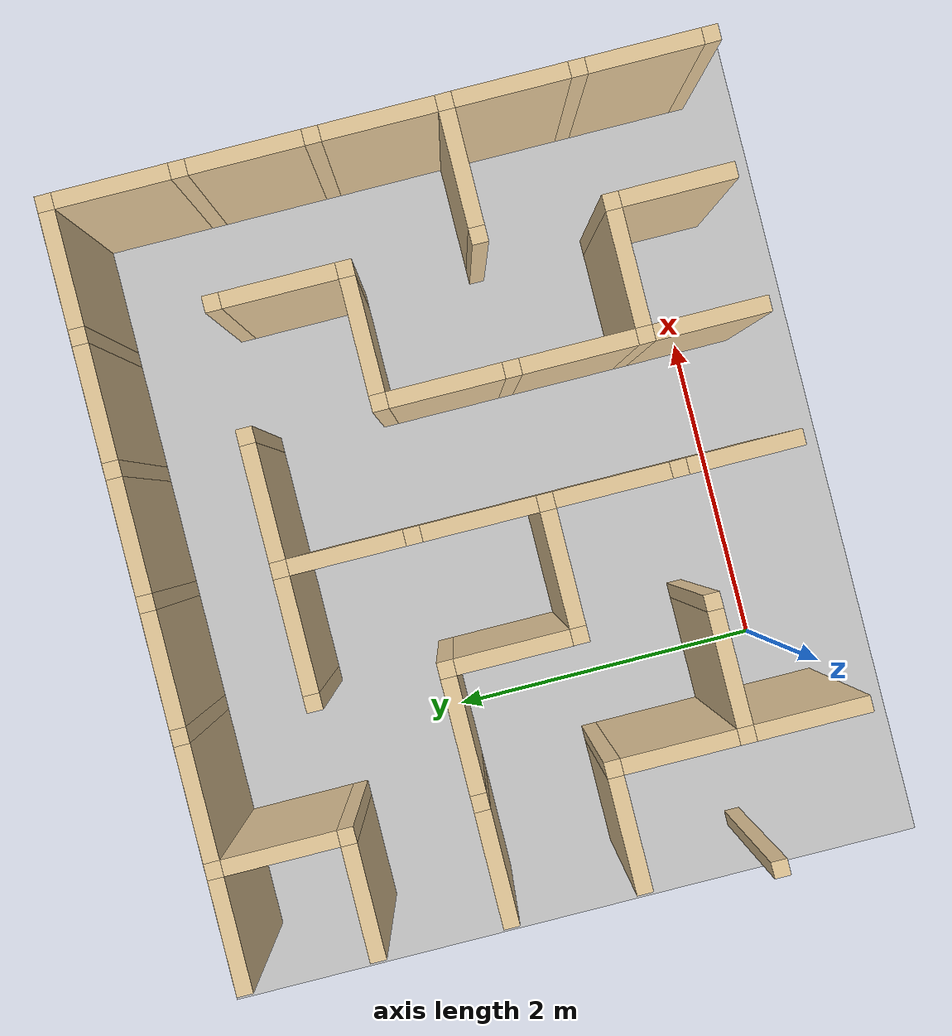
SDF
<sdf version="1.8">
 <world name="maze_world">
  <model name="ground_plane">
   <static>true</static>
   <link name="link">
    <collision name="collision">
     <geometry><plane><normal>0 0 1</normal><size>100 100</size></plane></geometry>
    </collision>
    <visual name="visual">
     <geometry><plane><normal>0 0 1</normal><size>100 100</size></plane></geometry>
     <material><ambient>0.8 0.8 0.8 1</ambient><diffuse>0.8 0.8 0.8 1</diffuse></material>
    </visual>
   </link>
  </model>
  <model name="maze">
   <link name="Wall_3_0_h">
    <collision name="Wall_0_Collision">
     <geometry><box><size>0.7000000000000001 0.1 1.5</size></box></geometry>
     <pose>0 0 0.75 0 -0 0</pose>
    </collision>
    <visual name="Wall_0_Visual">
     <pose>0 0 0.75 0 -0 0</pose>
     <geometry><box><size>0.7000000000000001 0.1 1.5</size></box></geometry>
     <material>
      <diffuse>0.921569 0.807843 0.615686 1</diffuse>
      <ambient>0.921569 0.807843 0.615686 1</ambient>
     </material>
     <meta><layer>0</layer></meta>
    </visual>
    <pose>-0.7999999999999998 3.6 0 0 -0 0</pose>
   </link>
   <link name="Wall_4_0_h">
    <collision name="Wall_0_Collision">
     <geometry><box><size>0.7000000000000001 0.1 1.5</size></box></geometry>
     <pose>0 0 0.75 0 -0 0</pose>
    </collision>
    <visual name="Wall_0_Visual">
     <pose>0 0 0.75 0 -0 0</pose>
     <geometry><box><size>0.7000000000000001 0.1 1.5</size></box></geometry>
     <material>
      <diffuse>0.921569 0.807843 0.615686 1</diffuse>
      <ambient>0.921569 0.807843 0.615686 1</ambient>
     </material>
     <meta><layer>0</layer></meta>
    </visual>
    <pose>0.0 3.6 0 0 -0 0</pose>
   </link>
   <link name="Wall_4_0_v">
    <collision name="Wall_0_Collision">
     <geometry><box><size>0.7000000000000001 0.1 1.5</size></box></geometry>
     <pose>0 0 0.75 0 -0 0</pose>
    </collision>
    <visual name="Wall_0_Visual">
     <pose>0 0 0.75 0 -0 0</pose>
     <geometry><box><size>0.7000000000000001 0.1 1.5</size></box></geometry>
     <material>
      <diffuse>0.921569 0.807843 0.615686 1</diffuse>
      <ambient>0.921569 0.807843 0.615686 1</ambient>
     </material>
     <meta><layer>0</layer></meta>
    </visual>
    <pose>-0.3999999999999999 3.2 0 0 -0 1.5708</pose>
   </link>
   <link name="Joint_-0.3999999999999999_3.6">
    <collision name="Wall_2_Collision">
     <geometry><box><size>0.1 0.1 1.5</size></box></geometry>
     <pose>0 0 0.75 0 -0 0</pose>
    </collision>
    <visual name="Wall_2_Visual">
     <pose>0 0 0.75 0 -0 0</pose>
     <geometry><box><size>0.1 0.1 1.5</size></box></geometry>
     <material>
      <diffuse>0.921569 0.807843 0.615686 1</diffuse>
      <ambient>0.721569 0.907843 0.215686 1</ambient>
     </material>
     <meta><layer>0</layer></meta>
    </visual>
    <pose>-0.3999999999999999 3.6 0 0 -0 0</pose>
   </link>
   <link name="Wall_5_0_h">
    <collision name="Wall_0_Collision">
     <geometry><box><size>0.7000000000000001 0.1 1.5</size></box></geometry>
     <pose>0 0 0.75 0 -0 0</pose>
    </collision>
    <visual name="Wall_0_Visual">
     <pose>0 0 0.75 0 -0 0</pose>
     <geometry><box><size>0.7000000000000001 0.1 1.5</size></box></geometry>
     <material>
      <diffuse>0.921569 0.807843 0.615686 1</diffuse>
      <ambient>0.921569 0.807843 0.615686 1</ambient>
     </material>
     <meta><layer>0</layer></meta>
    </visual>
    <pose>0.8000000000000003 3.6 0 0 -0 0</pose>
   </link>
   <link name="Joint_0.3999999999999999_3.6">
    <collision name="Wall_2_Collision">
     <geometry><box><size>0.1 0.1 1.5</size></box></geometry>
     <pose>0 0 0.75 0 -0 0</pose>
    </collision>
    <visual name="Wall_2_Visual">
     <pose>0 0 0.75 0 -0 0</pose>
     <geometry><box><size>0.1 0.1 1.5</size></box></geometry>
     <material>
      <diffuse>0.921569 0.807843 0.615686 1</diffuse>
      <ambient>0.721569 0.907843 0.215686 1</ambient>
     </material>
     <meta><layer>0</layer></meta>
    </visual>
    <pose>0.3999999999999999 3.6 0 0 -0 0</pose>
   </link>
   <link name="Wall_6_0_h">
    <collision name="Wall_0_Collision">
     <geometry><box><size>0.7000000000000001 0.1 1.5</size></box></geometry>
     <pose>0 0 0.75 0 -0 0</pose>
    </collision>
    <visual name="Wall_0_Visual">
     <pose>0 0 0.75 0 -0 0</pose>
     <geometry><box><size>0.7000000000000001 0.1 1.5</size></box></geometry>
     <material>
      <diffuse>0.921569 0.807843 0.615686 1</diffuse>
      <ambient>0.921569 0.807843 0.615686 1</ambient>
     </material>
     <meta><layer>0</layer></meta>
    </visual>
    <pose>1.600000000000001 3.6 0 0 -0 0</pose>
   </link>
   <link name="Joint_1.2000000000000006_3.6">
    <collision name="Wall_2_Collision">
     <geometry><box><size>0.1 0.1 1.5</size></box></geometry>
     <pose>0 0 0.75 0 -0 0</pose>
    </collision>
    <visual name="Wall_2_Visual">
     <pose>0 0 0.75 0 -0 0</pose>
     <geometry><box><size>0.1 0.1 1.5</size></box></geometry>
     <material>
      <diffuse>0.921569 0.807843 0.615686 1</diffuse>
      <ambient>0.721569 0.907843 0.215686 1</ambient>
     </material>
     <meta><layer>0</layer></meta>
    </visual>
    <pose>1.2000000000000006 3.6 0 0 -0 0</pose>
   </link>
   <link name="Wall_7_0_h">
    <collision name="Wall_0_Collision">
     <geometry><box><size>0.7000000000000001 0.1 1.5</size></box></geometry>
     <pose>0 0 0.75 0 -0 0</pose>
    </collision>
    <visual name="Wall_0_Visual">
     <pose>0 0 0.75 0 -0 0</pose>
     <geometry><box><size>0.7000000000000001 0.1 1.5</size></box></geometry>
     <material>
      <diffuse>0.921569 0.807843 0.615686 1</diffuse>
      <ambient>0.921569 0.807843 0.615686 1</ambient>
     </material>
     <meta><layer>0</layer></meta>
    </visual>
    <pose>2.400000000000001 3.6 0 0 -0 0</pose>
   </link>
   <link name="Joint_2.0000000000000004_3.6">
    <collision name="Wall_2_Collision">
     <geometry><box><size>0.1 0.1 1.5</size></box></geometry>
     <pose>0 0 0.75 0 -0 0</pose>
    </collision>
    <visual name="Wall_2_Visual">
     <pose>0 0 0.75 0 -0 0</pose>
     <geometry><box><size>0.1 0.1 1.5</size></box></geometry>
     <material>
      <diffuse>0.921569 0.807843 0.615686 1</diffuse>
      <ambient>0.721569 0.907843 0.215686 1</ambient>
     </material>
     <meta><layer>0</layer></meta>
    </visual>
    <pose>2.0000000000000004 3.6 0 0 -0 0</pose>
   </link>
   <link name="Wall_8_0_h">
    <collision name="Wall_0_Collision">
     <geometry><box><size>0.7000000000000001 0.1 1.5</size></box></geometry>
     <pose>0 0 0.75 0 -0 0</pose>
    </collision>
    <visual name="Wall_0_Visual">
     <pose>0 0 0.75 0 -0 0</pose>
     <geometry><box><size>0.7000000000000001 0.1 1.5</size></box></geometry>
     <material>
      <diffuse>0.921569 0.807843 0.615686 1</diffuse>
      <ambient>0.921569 0.807843 0.615686 1</ambient>
     </material>
     <meta><layer>0</layer></meta>
    </visual>
    <pose>3.2000000000000006 3.6 0 0 -0 0</pose>
   </link>
   <link name="Joint_2.8000000000000003_3.6">
    <collision name="Wall_2_Collision">
     <geometry><box><size>0.1 0.1 1.5</size></box></geometry>
     <pose>0 0 0.75 0 -0 0</pose>
    </collision>
    <visual name="Wall_2_Visual">
     <pose>0 0 0.75 0 -0 0</pose>
     <geometry><box><size>0.1 0.1 1.5</size></box></geometry>
     <material>
      <diffuse>0.921569 0.807843 0.615686 1</diffuse>
      <ambient>0.721569 0.907843 0.215686 1</ambient>
     </material>
     <meta><layer>0</layer></meta>
    </visual>
    <pose>2.8000000000000003 3.6 0 0 -0 0</pose>
   </link>
   <link name="Wall_9_0_v">
    <collision name="Wall_0_Collision">
     <geometry><box><size>0.7000000000000001 0.1 1.5</size></box></geometry>
     <pose>0 0 0.75 0 -0 0</pose>
    </collision>
    <visual name="Wall_0_Visual">
     <pose>0 0 0.75 0 -0 0</pose>
     <geometry><box><size>0.7000000000000001 0.1 1.5</size></box></geometry>
     <material>
      <diffuse>0.921569 0.807843 0.615686 1</diffuse>
      <ambient>0.921569 0.807843 0.615686 1</ambient>
     </material>
     <meta><layer>0</layer></meta>
    </visual>
    <pose>3.6 3.2 0 0 -0 1.5708</pose>
   </link>
   <link name="Joint_3.6_3.6">
    <collision name="Wall_2_Collision">
     <geometry><box><size>0.1 0.1 1.5</size></box></geometry>
     <pose>0 0 0.75 0 -0 0</pose>
    </collision>
    <visual name="Wall_2_Visual">
     <pose>0 0 0.75 0 -0 0</pose>
     <geometry><box><size>0.1 0.1 1.5</size></box></geometry>
     <material>
      <diffuse>0.921569 0.807843 0.615686 1</diffuse>
      <ambient>0.721569 0.907843 0.215686 1</ambient>
     </material>
     <meta><layer>0</layer></meta>
    </visual>
    <pose>3.6 3.6 0 0 -0 0</pose>
   </link>
   <link name="Wall_3_1_h">
    <collision name="Wall_0_Collision">
     <geometry><box><size>0.7000000000000001 0.1 1.5</size></box></geometry>
     <pose>0 0 0.75 0 -0 0</pose>
    </collision>
    <visual name="Wall_0_Visual">
     <pose>0 0 0.75 0 -0 0</pose>
     <geometry><box><size>0.7000000000000001 0.1 1.5</size></box></geometry>
     <material>
      <diffuse>0.921569 0.807843 0.615686 1</diffuse>
      <ambient>0.921569 0.807843 0.615686 1</ambient>
     </material>
     <meta><layer>0</layer></meta>
    </visual>
    <pose>-0.7999999999999998 2.8 0 0 -0 0</pose>
   </link>
   <link name="Joint_-0.3999999999999999_2.8">
    <collision name="Wall_2_Collision">
     <geometry><box><size>0.1 0.1 1.5</size></box></geometry>
     <pose>0 0 0.75 0 -0 0</pose>
    </collision>
    <visual name="Wall_2_Visual">
     <pose>0 0 0.75 0 -0 0</pose>
     <geometry><box><size>0.1 0.1 1.5</size></box></geometry>
     <material>
      <diffuse>0.921569 0.807843 0.615686 1</diffuse>
      <ambient>0.721569 0.907843 0.215686 1</ambient>
     </material>
     <meta><layer>0</layer></meta>
    </visual>
    <pose>-0.3999999999999999 2.8 0 0 -0 0</pose>
   </link>
   <link name="Wall_5_1_h">
    <collision name="Wall_0_Collision">
     <geometry><box><size>0.7000000000000001 0.1 1.5</size></box></geometry>
     <pose>0 0 0.75 0 -0 0</pose>
    </collision>
    <visual name="Wall_0_Visual">
     <pose>0 0 0.75 0 -0 0</pose>
     <geometry><box><size>0.7000000000000001 0.1 1.5</size></box></geometry>
     <material>
      <diffuse>0.921569 0.807843 0.615686 1</diffuse>
      <ambient>0.921569 0.807843 0.615686 1</ambient>
     </material>
     <meta><layer>0</layer></meta>
    </visual>
    <pose>0.8000000000000003 2.8 0 0 -0 0</pose>
   </link>
   <link name="Joint_0.3999999999999999_2.8">
    <collision name="Wall_2_Collision">
     <geometry><box><size>0.1 0.1 1.5</size></box></geometry>
     <pose>0 0 0.75 0 -0 0</pose>
    </collision>
    <visual name="Wall_2_Visual">
     <pose>0 0 0.75 0 -0 0</pose>
     <geometry><box><size>0.1 0.1 1.5</size></box></geometry>
     <material>
      <diffuse>0.921569 0.807843 0.615686 1</diffuse>
      <ambient>0.721569 0.907843 0.215686 1</ambient>
     </material>
     <meta><layer>0</layer></meta>
    </visual>
    <pose>0.3999999999999999 2.8 0 0 -0 0</pose>
   </link>
   <link name="Wall_6_1_h">
    <collision name="Wall_0_Collision">
     <geometry><box><size>0.7000000000000001 0.1 1.5</size></box></geometry>
     <pose>0 0 0.75 0 -0 0</pose>
    </collision>
    <visual name="Wall_0_Visual">
     <pose>0 0 0.75 0 -0 0</pose>
     <geometry><box><size>0.7000000000000001 0.1 1.5</size></box></geometry>
     <material>
      <diffuse>0.921569 0.807843 0.615686 1</diffuse>
      <ambient>0.921569 0.807843 0.615686 1</ambient>
     </material>
     <meta><layer>0</layer></meta>
    </visual>
    <pose>1.600000000000001 2.8 0 0 -0 0</pose>
   </link>
   <link name="Wall_6_1_v">
    <collision name="Wall_0_Collision">
     <geometry><box><size>0.7000000000000001 0.1 1.5</size></box></geometry>
     <pose>0 0 0.75 0 -0 0</pose>
    </collision>
    <visual name="Wall_0_Visual">
     <pose>0 0 0.75 0 -0 0</pose>
     <geometry><box><size>0.7000000000000001 0.1 1.5</size></box></geometry>
     <material>
      <diffuse>0.921569 0.807843 0.615686 1</diffuse>
      <ambient>0.921569 0.807843 0.615686 1</ambient>
     </material>
     <meta><layer>0</layer></meta>
    </visual>
    <pose>1.2000000000000006 2.4 0 0 -0 1.5708</pose>
   </link>
   <link name="Joint_1.2000000000000006_2.8">
    <collision name="Wall_2_Collision">
     <geometry><box><size>0.1 0.1 1.5</size></box></geometry>
     <pose>0 0 0.75 0 -0 0</pose>
    </collision>
    <visual name="Wall_2_Visual">
     <pose>0 0 0.75 0 -0 0</pose>
     <geometry><box><size>0.1 0.1 1.5</size></box></geometry>
     <material>
      <diffuse>0.921569 0.807843 0.615686 1</diffuse>
      <ambient>0.721569 0.907843 0.215686 1</ambient>
     </material>
     <meta><layer>0</layer></meta>
    </visual>
    <pose>1.2000000000000006 2.8 0 0 -0 0</pose>
   </link>
   <link name="Joint_2.0000000000000004_2.8">
    <collision name="Wall_2_Collision">
     <geometry><box><size>0.1 0.1 1.5</size></box></geometry>
     <pose>0 0 0.75 0 -0 0</pose>
    </collision>
    <visual name="Wall_2_Visual">
     <pose>0 0 0.75 0 -0 0</pose>
     <geometry><box><size>0.1 0.1 1.5</size></box></geometry>
     <material>
      <diffuse>0.921569 0.807843 0.615686 1</diffuse>
      <ambient>0.721569 0.907843 0.215686 1</ambient>
     </material>
     <meta><layer>0</layer></meta>
    </visual>
    <pose>2.0000000000000004 2.8 0 0 -0 0</pose>
   </link>
   <link name="Wall_8_1_v">
    <collision name="Wall_0_Collision">
     <geometry><box><size>0.7000000000000001 0.1 1.5</size></box></geometry>
     <pose>0 0 0.75 0 -0 0</pose>
    </collision>
    <visual name="Wall_0_Visual">
     <pose>0 0 0.75 0 -0 0</pose>
     <geometry><box><size>0.7000000000000001 0.1 1.5</size></box></geometry>
     <material>
      <diffuse>0.921569 0.807843 0.615686 1</diffuse>
      <ambient>0.921569 0.807843 0.615686 1</ambient>
     </material>
     <meta><layer>0</layer></meta>
    </visual>
    <pose>2.8000000000000003 2.4 0 0 -0 1.5708</pose>
   </link>
   <link name="Joint_2.8000000000000003_2.8">
    <collision name="Wall_2_Collision">
     <geometry><box><size>0.1 0.1 1.5</size></box></geometry>
     <pose>0 0 0.75 0 -0 0</pose>
    </collision>
    <visual name="Wall_2_Visual">
     <pose>0 0 0.75 0 -0 0</pose>
     <geometry><box><size>0.1 0.1 1.5</size></box></geometry>
     <material>
      <diffuse>0.921569 0.807843 0.615686 1</diffuse>
      <ambient>0.721569 0.907843 0.215686 1</ambient>
     </material>
     <meta><layer>0</layer></meta>
    </visual>
    <pose>2.8000000000000003 2.8 0 0 -0 0</pose>
   </link>
   <link name="Wall_9_1_v">
    <collision name="Wall_0_Collision">
     <geometry><box><size>0.7000000000000001 0.1 1.5</size></box></geometry>
     <pose>0 0 0.75 0 -0 0</pose>
    </collision>
    <visual name="Wall_0_Visual">
     <pose>0 0 0.75 0 -0 0</pose>
     <geometry><box><size>0.7000000000000001 0.1 1.5</size></box></geometry>
     <material>
      <diffuse>0.921569 0.807843 0.615686 1</diffuse>
      <ambient>0.921569 0.807843 0.615686 1</ambient>
     </material>
     <meta><layer>0</layer></meta>
    </visual>
    <pose>3.6 2.4 0 0 -0 1.5708</pose>
   </link>
   <link name="Joint_3.6_2.8">
    <collision name="Wall_2_Collision">
     <geometry><box><size>0.1 0.1 1.5</size></box></geometry>
     <pose>0 0 0.75 0 -0 0</pose>
    </collision>
    <visual name="Wall_2_Visual">
     <pose>0 0 0.75 0 -0 0</pose>
     <geometry><box><size>0.1 0.1 1.5</size></box></geometry>
     <material>
      <diffuse>0.921569 0.807843 0.615686 1</diffuse>
      <ambient>0.721569 0.907843 0.215686 1</ambient>
     </material>
     <meta><layer>0</layer></meta>
    </visual>
    <pose>3.6 2.8 0 0 -0 0</pose>
   </link>
   <link name="Wall_3_2_h">
    <collision name="Wall_0_Collision">
     <geometry><box><size>0.7000000000000001 0.1 1.5</size></box></geometry>
     <pose>0 0 0.75 0 -0 0</pose>
    </collision>
    <visual name="Wall_0_Visual">
     <pose>0 0 0.75 0 -0 0</pose>
     <geometry><box><size>0.7000000000000001 0.1 1.5</size></box></geometry>
     <material>
      <diffuse>0.921569 0.807843 0.615686 1</diffuse>
      <ambient>0.921569 0.807843 0.615686 1</ambient>
     </material>
     <meta><layer>0</layer></meta>
    </visual>
    <pose>-0.7999999999999998 2.0 0 0 -0 0</pose>
   </link>
   <link name="Wall_4_2_h">
    <collision name="Wall_0_Collision">
     <geometry><box><size>0.7000000000000001 0.1 1.5</size></box></geometry>
     <pose>0 0 0.75 0 -0 0</pose>
    </collision>
    <visual name="Wall_0_Visual">
     <pose>0 0 0.75 0 -0 0</pose>
     <geometry><box><size>0.7000000000000001 0.1 1.5</size></box></geometry>
     <material>
      <diffuse>0.921569 0.807843 0.615686 1</diffuse>
      <ambient>0.921569 0.807843 0.615686 1</ambient>
     </material>
     <meta><layer>0</layer></meta>
    </visual>
    <pose>0.0 2.0 0 0 -0 0</pose>
   </link>
   <link name="Joint_-0.3999999999999999_2.0">
    <collision name="Wall_2_Collision">
     <geometry><box><size>0.1 0.1 1.5</size></box></geometry>
     <pose>0 0 0.75 0 -0 0</pose>
    </collision>
    <visual name="Wall_2_Visual">
     <pose>0 0 0.75 0 -0 0</pose>
     <geometry><box><size>0.1 0.1 1.5</size></box></geometry>
     <material>
      <diffuse>0.921569 0.807843 0.615686 1</diffuse>
      <ambient>0.721569 0.907843 0.215686 1</ambient>
     </material>
     <meta><layer>0</layer></meta>
    </visual>
    <pose>-0.3999999999999999 2.0 0 0 -0 0</pose>
   </link>
   <link name="Wall_5_2_v">
    <collision name="Wall_0_Collision">
     <geometry><box><size>0.7000000000000001 0.1 1.5</size></box></geometry>
     <pose>0 0 0.75 0 -0 0</pose>
    </collision>
    <visual name="Wall_0_Visual">
     <pose>0 0 0.75 0 -0 0</pose>
     <geometry><box><size>0.7000000000000001 0.1 1.5</size></box></geometry>
     <material>
      <diffuse>0.921569 0.807843 0.615686 1</diffuse>
      <ambient>0.921569 0.807843 0.615686 1</ambient>
     </material>
     <meta><layer>0</layer></meta>
    </visual>
    <pose>0.3999999999999999 1.6 0 0 -0 1.5708</pose>
   </link>
   <link name="Joint_0.3999999999999999_2.0">
    <collision name="Wall_2_Collision">
     <geometry><box><size>0.1 0.1 1.5</size></box></geometry>
     <pose>0 0 0.75 0 -0 0</pose>
    </collision>
    <visual name="Wall_2_Visual">
     <pose>0 0 0.75 0 -0 0</pose>
     <geometry><box><size>0.1 0.1 1.5</size></box></geometry>
     <material>
      <diffuse>0.921569 0.807843 0.615686 1</diffuse>
      <ambient>0.721569 0.907843 0.215686 1</ambient>
     </material>
     <meta><layer>0</layer></meta>
    </visual>
    <pose>0.3999999999999999 2.0 0 0 -0 0</pose>
   </link>
   <link name="Wall_6_2_v">
    <collision name="Wall_0_Collision">
     <geometry><box><size>0.7000000000000001 0.1 1.5</size></box></geometry>
     <pose>0 0 0.75 0 -0 0</pose>
    </collision>
    <visual name="Wall_0_Visual">
     <pose>0 0 0.75 0 -0 0</pose>
     <geometry><box><size>0.7000000000000001 0.1 1.5</size></box></geometry>
     <material>
      <diffuse>0.921569 0.807843 0.615686 1</diffuse>
      <ambient>0.921569 0.807843 0.615686 1</ambient>
     </material>
     <meta><layer>0</layer></meta>
    </visual>
    <pose>1.2000000000000006 1.6 0 0 -0 1.5708</pose>
   </link>
   <link name="Joint_1.2000000000000006_2.0">
    <collision name="Wall_2_Collision">
     <geometry><box><size>0.1 0.1 1.5</size></box></geometry>
     <pose>0 0 0.75 0 -0 0</pose>
    </collision>
    <visual name="Wall_2_Visual">
     <pose>0 0 0.75 0 -0 0</pose>
     <geometry><box><size>0.1 0.1 1.5</size></box></geometry>
     <material>
      <diffuse>0.921569 0.807843 0.615686 1</diffuse>
      <ambient>0.721569 0.907843 0.215686 1</ambient>
     </material>
     <meta><layer>0</layer></meta>
    </visual>
    <pose>1.2000000000000006 2.0 0 0 -0 0</pose>
   </link>
   <link name="Wall_7_2_h">
    <collision name="Wall_0_Collision">
     <geometry><box><size>0.7000000000000001 0.1 1.5</size></box></geometry>
     <pose>0 0 0.75 0 -0 0</pose>
    </collision>
    <visual name="Wall_0_Visual">
     <pose>0 0 0.75 0 -0 0</pose>
     <geometry><box><size>0.7000000000000001 0.1 1.5</size></box></geometry>
     <material>
      <diffuse>0.921569 0.807843 0.615686 1</diffuse>
      <ambient>0.921569 0.807843 0.615686 1</ambient>
     </material>
     <meta><layer>0</layer></meta>
    </visual>
    <pose>2.400000000000001 2.0 0 0 -0 0</pose>
   </link>
   <link name="Wall_7_2_v">
    <collision name="Wall_0_Collision">
     <geometry><box><size>0.7000000000000001 0.1 1.5</size></box></geometry>
     <pose>0 0 0.75 0 -0 0</pose>
    </collision>
    <visual name="Wall_0_Visual">
     <pose>0 0 0.75 0 -0 0</pose>
     <geometry><box><size>0.7000000000000001 0.1 1.5</size></box></geometry>
     <material>
      <diffuse>0.921569 0.807843 0.615686 1</diffuse>
      <ambient>0.921569 0.807843 0.615686 1</ambient>
     </material>
     <meta><layer>0</layer></meta>
    </visual>
    <pose>2.0000000000000004 1.6 0 0 -0 1.5708</pose>
   </link>
   <link name="Joint_2.0000000000000004_2.0">
    <collision name="Wall_2_Collision">
     <geometry><box><size>0.1 0.1 1.5</size></box></geometry>
     <pose>0 0 0.75 0 -0 0</pose>
    </collision>
    <visual name="Wall_2_Visual">
     <pose>0 0 0.75 0 -0 0</pose>
     <geometry><box><size>0.1 0.1 1.5</size></box></geometry>
     <material>
      <diffuse>0.921569 0.807843 0.615686 1</diffuse>
      <ambient>0.721569 0.907843 0.215686 1</ambient>
     </material>
     <meta><layer>0</layer></meta>
    </visual>
    <pose>2.0000000000000004 2.0 0 0 -0 0</pose>
   </link>
   <link name="Joint_2.8000000000000003_2.0">
    <collision name="Wall_2_Collision">
     <geometry><box><size>0.1 0.1 1.5</size></box></geometry>
     <pose>0 0 0.75 0 -0 0</pose>
    </collision>
    <visual name="Wall_2_Visual">
     <pose>0 0 0.75 0 -0 0</pose>
     <geometry><box><size>0.1 0.1 1.5</size></box></geometry>
     <material>
      <diffuse>0.921569 0.807843 0.615686 1</diffuse>
      <ambient>0.721569 0.907843 0.215686 1</ambient>
     </material>
     <meta><layer>0</layer></meta>
    </visual>
    <pose>2.8000000000000003 2.0 0 0 -0 0</pose>
   </link>
   <link name="Wall_9_2_v">
    <collision name="Wall_0_Collision">
     <geometry><box><size>0.7000000000000001 0.1 1.5</size></box></geometry>
     <pose>0 0 0.75 0 -0 0</pose>
    </collision>
    <visual name="Wall_0_Visual">
     <pose>0 0 0.75 0 -0 0</pose>
     <geometry><box><size>0.7000000000000001 0.1 1.5</size></box></geometry>
     <material>
      <diffuse>0.921569 0.807843 0.615686 1</diffuse>
      <ambient>0.921569 0.807843 0.615686 1</ambient>
     </material>
     <meta><layer>0</layer></meta>
    </visual>
    <pose>3.6 1.6 0 0 -0 1.5708</pose>
   </link>
   <link name="Joint_3.6_2.0">
    <collision name="Wall_2_Collision">
     <geometry><box><size>0.1 0.1 1.5</size></box></geometry>
     <pose>0 0 0.75 0 -0 0</pose>
    </collision>
    <visual name="Wall_2_Visual">
     <pose>0 0 0.75 0 -0 0</pose>
     <geometry><box><size>0.1 0.1 1.5</size></box></geometry>
     <material>
      <diffuse>0.921569 0.807843 0.615686 1</diffuse>
      <ambient>0.721569 0.907843 0.215686 1</ambient>
     </material>
     <meta><layer>0</layer></meta>
    </visual>
    <pose>3.6 2.0 0 0 -0 0</pose>
   </link>
   <link name="Wall_3_3_h">
    <collision name="Wall_0_Collision">
     <geometry><box><size>0.7000000000000001 0.1 1.5</size></box></geometry>
     <pose>0 0 0.75 0 -0 0</pose>
    </collision>
    <visual name="Wall_0_Visual">
     <pose>0 0 0.75 0 -0 0</pose>
     <geometry><box><size>0.7000000000000001 0.1 1.5</size></box></geometry>
     <material>
      <diffuse>0.921569 0.807843 0.615686 1</diffuse>
      <ambient>0.921569 0.807843 0.615686 1</ambient>
     </material>
     <meta><layer>0</layer></meta>
    </visual>
    <pose>-0.7999999999999998 1.1999999999999997 0 0 -0 0</pose>
   </link>
   <link name="Wall_4_3_v">
    <collision name="Wall_0_Collision">
     <geometry><box><size>0.7000000000000001 0.1 1.5</size></box></geometry>
     <pose>0 0 0.75 0 -0 0</pose>
    </collision>
    <visual name="Wall_0_Visual">
     <pose>0 0 0.75 0 -0 0</pose>
     <geometry><box><size>0.7000000000000001 0.1 1.5</size></box></geometry>
     <material>
      <diffuse>0.921569 0.807843 0.615686 1</diffuse>
      <ambient>0.921569 0.807843 0.615686 1</ambient>
     </material>
     <meta><layer>0</layer></meta>
    </visual>
    <pose>-0.3999999999999999 0.7999999999999998 0 0 -0 1.5708</pose>
   </link>
   <link name="Joint_-0.3999999999999999_1.1999999999999997">
    <collision name="Wall_2_Collision">
     <geometry><box><size>0.1 0.1 1.5</size></box></geometry>
     <pose>0 0 0.75 0 -0 0</pose>
    </collision>
    <visual name="Wall_2_Visual">
     <pose>0 0 0.75 0 -0 0</pose>
     <geometry><box><size>0.1 0.1 1.5</size></box></geometry>
     <material>
      <diffuse>0.921569 0.807843 0.615686 1</diffuse>
      <ambient>0.721569 0.907843 0.215686 1</ambient>
     </material>
     <meta><layer>0</layer></meta>
    </visual>
    <pose>-0.3999999999999999 1.1999999999999997 0 0 -0 0</pose>
   </link>
   <link name="Wall_5_3_h">
    <collision name="Wall_0_Collision">
     <geometry><box><size>0.7000000000000001 0.1 1.5</size></box></geometry>
     <pose>0 0 0.75 0 -0 0</pose>
    </collision>
    <visual name="Wall_0_Visual">
     <pose>0 0 0.75 0 -0 0</pose>
     <geometry><box><size>0.7000000000000001 0.1 1.5</size></box></geometry>
     <material>
      <diffuse>0.921569 0.807843 0.615686 1</diffuse>
      <ambient>0.921569 0.807843 0.615686 1</ambient>
     </material>
     <meta><layer>0</layer></meta>
    </visual>
    <pose>0.8000000000000003 1.1999999999999997 0 0 -0 0</pose>
   </link>
   <link name="Joint_0.3999999999999999_1.1999999999999997">
    <collision name="Wall_2_Collision">
     <geometry><box><size>0.1 0.1 1.5</size></box></geometry>
     <pose>0 0 0.75 0 -0 0</pose>
    </collision>
    <visual name="Wall_2_Visual">
     <pose>0 0 0.75 0 -0 0</pose>
     <geometry><box><size>0.1 0.1 1.5</size></box></geometry>
     <material>
      <diffuse>0.921569 0.807843 0.615686 1</diffuse>
      <ambient>0.721569 0.907843 0.215686 1</ambient>
     </material>
     <meta><layer>0</layer></meta>
    </visual>
    <pose>0.3999999999999999 1.1999999999999997 0 0 -0 0</pose>
   </link>
   <link name="Wall_6_3_v">
    <collision name="Wall_0_Collision">
     <geometry><box><size>0.7000000000000001 0.1 1.5</size></box></geometry>
     <pose>0 0 0.75 0 -0 0</pose>
    </collision>
    <visual name="Wall_0_Visual">
     <pose>0 0 0.75 0 -0 0</pose>
     <geometry><box><size>0.7000000000000001 0.1 1.5</size></box></geometry>
     <material>
      <diffuse>0.921569 0.807843 0.615686 1</diffuse>
      <ambient>0.921569 0.807843 0.615686 1</ambient>
     </material>
     <meta><layer>0</layer></meta>
    </visual>
    <pose>1.2000000000000006 0.7999999999999998 0 0 -0 1.5708</pose>
   </link>
   <link name="Joint_1.2000000000000006_1.1999999999999997">
    <collision name="Wall_2_Collision">
     <geometry><box><size>0.1 0.1 1.5</size></box></geometry>
     <pose>0 0 0.75 0 -0 0</pose>
    </collision>
    <visual name="Wall_2_Visual">
     <pose>0 0 0.75 0 -0 0</pose>
     <geometry><box><size>0.1 0.1 1.5</size></box></geometry>
     <material>
      <diffuse>0.921569 0.807843 0.615686 1</diffuse>
      <ambient>0.721569 0.907843 0.215686 1</ambient>
     </material>
     <meta><layer>0</layer></meta>
    </visual>
    <pose>1.2000000000000006 1.1999999999999997 0 0 -0 0</pose>
   </link>
   <link name="Wall_7_3_v">
    <collision name="Wall_0_Collision">
     <geometry><box><size>0.7000000000000001 0.1 1.5</size></box></geometry>
     <pose>0 0 0.75 0 -0 0</pose>
    </collision>
    <visual name="Wall_0_Visual">
     <pose>0 0 0.75 0 -0 0</pose>
     <geometry><box><size>0.7000000000000001 0.1 1.5</size></box></geometry>
     <material>
      <diffuse>0.921569 0.807843 0.615686 1</diffuse>
      <ambient>0.921569 0.807843 0.615686 1</ambient>
     </material>
     <meta><layer>0</layer></meta>
    </visual>
    <pose>2.0000000000000004 0.7999999999999998 0 0 -0 1.5708</pose>
   </link>
   <link name="Joint_2.0000000000000004_1.1999999999999997">
    <collision name="Wall_2_Collision">
     <geometry><box><size>0.1 0.1 1.5</size></box></geometry>
     <pose>0 0 0.75 0 -0 0</pose>
    </collision>
    <visual name="Wall_2_Visual">
     <pose>0 0 0.75 0 -0 0</pose>
     <geometry><box><size>0.1 0.1 1.5</size></box></geometry>
     <material>
      <diffuse>0.921569 0.807843 0.615686 1</diffuse>
      <ambient>0.721569 0.907843 0.215686 1</ambient>
     </material>
     <meta><layer>0</layer></meta>
    </visual>
    <pose>2.0000000000000004 1.1999999999999997 0 0 -0 0</pose>
   </link>
   <link name="Wall_8_3_h">
    <collision name="Wall_0_Collision">
     <geometry><box><size>0.7000000000000001 0.1 1.5</size></box></geometry>
     <pose>0 0 0.75 0 -0 0</pose>
    </collision>
    <visual name="Wall_0_Visual">
     <pose>0 0 0.75 0 -0 0</pose>
     <geometry><box><size>0.7000000000000001 0.1 1.5</size></box></geometry>
     <material>
      <diffuse>0.921569 0.807843 0.615686 1</diffuse>
      <ambient>0.921569 0.807843 0.615686 1</ambient>
     </material>
     <meta><layer>0</layer></meta>
    </visual>
    <pose>3.2000000000000006 1.1999999999999997 0 0 -0 0</pose>
   </link>
   <link name="Joint_2.8000000000000003_1.1999999999999997">
    <collision name="Wall_2_Collision">
     <geometry><box><size>0.1 0.1 1.5</size></box></geometry>
     <pose>0 0 0.75 0 -0 0</pose>
    </collision>
    <visual name="Wall_2_Visual">
     <pose>0 0 0.75 0 -0 0</pose>
     <geometry><box><size>0.1 0.1 1.5</size></box></geometry>
     <material>
      <diffuse>0.921569 0.807843 0.615686 1</diffuse>
      <ambient>0.721569 0.907843 0.215686 1</ambient>
     </material>
     <meta><layer>0</layer></meta>
    </visual>
    <pose>2.8000000000000003 1.1999999999999997 0 0 -0 0</pose>
   </link>
   <link name="Wall_9_3_v">
    <collision name="Wall_0_Collision">
     <geometry><box><size>0.7000000000000001 0.1 1.5</size></box></geometry>
     <pose>0 0 0.75 0 -0 0</pose>
    </collision>
    <visual name="Wall_0_Visual">
     <pose>0 0 0.75 0 -0 0</pose>
     <geometry><box><size>0.7000000000000001 0.1 1.5</size></box></geometry>
     <material>
      <diffuse>0.921569 0.807843 0.615686 1</diffuse>
      <ambient>0.921569 0.807843 0.615686 1</ambient>
     </material>
     <meta><layer>0</layer></meta>
    </visual>
    <pose>3.6 0.7999999999999998 0 0 -0 1.5708</pose>
   </link>
   <link name="Joint_3.6_1.1999999999999997">
    <collision name="Wall_2_Collision">
     <geometry><box><size>0.1 0.1 1.5</size></box></geometry>
     <pose>0 0 0.75 0 -0 0</pose>
    </collision>
    <visual name="Wall_2_Visual">
     <pose>0 0 0.75 0 -0 0</pose>
     <geometry><box><size>0.1 0.1 1.5</size></box></geometry>
     <material>
      <diffuse>0.921569 0.807843 0.615686 1</diffuse>
      <ambient>0.721569 0.907843 0.215686 1</ambient>
     </material>
     <meta><layer>0</layer></meta>
    </visual>
    <pose>3.6 1.1999999999999997 0 0 -0 0</pose>
   </link>
   <link name="Joint_-1.1999999999999997_0.3999999999999999">
    <collision name="Wall_2_Collision">
     <geometry><box><size>0.1 0.1 1.5</size></box></geometry>
     <pose>0 0 0.75 0 -0 0</pose>
    </collision>
    <visual name="Wall_2_Visual">
     <pose>0 0 0.75 0 -0 0</pose>
     <geometry><box><size>0.1 0.1 1.5</size></box></geometry>
     <material>
      <diffuse>0.921569 0.807843 0.615686 1</diffuse>
      <ambient>0.721569 0.907843 0.215686 1</ambient>
     </material>
     <meta><layer>0</layer></meta>
    </visual>
    <pose>-1.1999999999999997 0.3999999999999999 0 0 -0 0</pose>
   </link>
   <link name="Wall_4_4_h">
    <collision name="Wall_0_Collision">
     <geometry><box><size>0.7000000000000001 0.1 1.5</size></box></geometry>
     <pose>0 0 0.75 0 -0 0</pose>
    </collision>
    <visual name="Wall_0_Visual">
     <pose>0 0 0.75 0 -0 0</pose>
     <geometry><box><size>0.7000000000000001 0.1 1.5</size></box></geometry>
     <material>
      <diffuse>0.921569 0.807843 0.615686 1</diffuse>
      <ambient>0.921569 0.807843 0.615686 1</ambient>
     </material>
     <meta><layer>0</layer></meta>
    </visual>
    <pose>0.0 0.3999999999999999 0 0 -0 0</pose>
   </link>
   <link name="Wall_4_4_v">
    <collision name="Wall_0_Collision">
     <geometry><box><size>0.7000000000000001 0.1 1.5</size></box></geometry>
     <pose>0 0 0.75 0 -0 0</pose>
    </collision>
    <visual name="Wall_0_Visual">
     <pose>0 0 0.75 0 -0 0</pose>
     <geometry><box><size>0.7000000000000001 0.1 1.5</size></box></geometry>
     <material>
      <diffuse>0.921569 0.807843 0.615686 1</diffuse>
      <ambient>0.921569 0.807843 0.615686 1</ambient>
     </material>
     <meta><layer>0</layer></meta>
    </visual>
    <pose>-0.3999999999999999 -0.0 0 0 -0 1.5708</pose>
   </link>
   <link name="Joint_-0.3999999999999999_0.3999999999999999">
    <collision name="Wall_2_Collision">
     <geometry><box><size>0.1 0.1 1.5</size></box></geometry>
     <pose>0 0 0.75 0 -0 0</pose>
    </collision>
    <visual name="Wall_2_Visual">
     <pose>0 0 0.75 0 -0 0</pose>
     <geometry><box><size>0.1 0.1 1.5</size></box></geometry>
     <material>
      <diffuse>0.921569 0.807843 0.615686 1</diffuse>
      <ambient>0.721569 0.907843 0.215686 1</ambient>
     </material>
     <meta><layer>0</layer></meta>
    </visual>
    <pose>-0.3999999999999999 0.3999999999999999 0 0 -0 0</pose>
   </link>
   <link name="Joint_0.3999999999999999_0.3999999999999999">
    <collision name="Wall_2_Collision">
     <geometry><box><size>0.1 0.1 1.5</size></box></geometry>
     <pose>0 0 0.75 0 -0 0</pose>
    </collision>
    <visual name="Wall_2_Visual">
     <pose>0 0 0.75 0 -0 0</pose>
     <geometry><box><size>0.1 0.1 1.5</size></box></geometry>
     <material>
      <diffuse>0.921569 0.807843 0.615686 1</diffuse>
      <ambient>0.721569 0.907843 0.215686 1</ambient>
     </material>
     <meta><layer>0</layer></meta>
    </visual>
    <pose>0.3999999999999999 0.3999999999999999 0 0 -0 0</pose>
   </link>
   <link name="Wall_6_4_v">
    <collision name="Wall_0_Collision">
     <geometry><box><size>0.7000000000000001 0.1 1.5</size></box></geometry>
     <pose>0 0 0.75 0 -0 0</pose>
    </collision>
    <visual name="Wall_0_Visual">
     <pose>0 0 0.75 0 -0 0</pose>
     <geometry><box><size>0.7000000000000001 0.1 1.5</size></box></geometry>
     <material>
      <diffuse>0.921569 0.807843 0.615686 1</diffuse>
      <ambient>0.921569 0.807843 0.615686 1</ambient>
     </material>
     <meta><layer>0</layer></meta>
    </visual>
    <pose>1.2000000000000006 -0.0 0 0 -0 1.5708</pose>
   </link>
   <link name="Joint_1.2000000000000006_0.3999999999999999">
    <collision name="Wall_2_Collision">
     <geometry><box><size>0.1 0.1 1.5</size></box></geometry>
     <pose>0 0 0.75 0 -0 0</pose>
    </collision>
    <visual name="Wall_2_Visual">
     <pose>0 0 0.75 0 -0 0</pose>
     <geometry><box><size>0.1 0.1 1.5</size></box></geometry>
     <material>
      <diffuse>0.921569 0.807843 0.615686 1</diffuse>
      <ambient>0.721569 0.907843 0.215686 1</ambient>
     </material>
     <meta><layer>0</layer></meta>
    </visual>
    <pose>1.2000000000000006 0.3999999999999999 0 0 -0 0</pose>
   </link>
   <link name="Wall_7_4_h">
    <collision name="Wall_0_Collision">
     <geometry><box><size>0.7000000000000001 0.1 1.5</size></box></geometry>
     <pose>0 0 0.75 0 -0 0</pose>
    </collision>
    <visual name="Wall_0_Visual">
     <pose>0 0 0.75 0 -0 0</pose>
     <geometry><box><size>0.7000000000000001 0.1 1.5</size></box></geometry>
     <material>
      <diffuse>0.921569 0.807843 0.615686 1</diffuse>
      <ambient>0.921569 0.807843 0.615686 1</ambient>
     </material>
     <meta><layer>0</layer></meta>
    </visual>
    <pose>2.400000000000001 0.3999999999999999 0 0 -0 0</pose>
   </link>
   <link name="Wall_7_4_v">
    <collision name="Wall_0_Collision">
     <geometry><box><size>0.7000000000000001 0.1 1.5</size></box></geometry>
     <pose>0 0 0.75 0 -0 0</pose>
    </collision>
    <visual name="Wall_0_Visual">
     <pose>0 0 0.75 0 -0 0</pose>
     <geometry><box><size>0.7000000000000001 0.1 1.5</size></box></geometry>
     <material>
      <diffuse>0.921569 0.807843 0.615686 1</diffuse>
      <ambient>0.921569 0.807843 0.615686 1</ambient>
     </material>
     <meta><layer>0</layer></meta>
    </visual>
    <pose>2.0000000000000004 -0.0 0 0 -0 1.5708</pose>
   </link>
   <link name="Joint_2.0000000000000004_0.3999999999999999">
    <collision name="Wall_2_Collision">
     <geometry><box><size>0.1 0.1 1.5</size></box></geometry>
     <pose>0 0 0.75 0 -0 0</pose>
    </collision>
    <visual name="Wall_2_Visual">
     <pose>0 0 0.75 0 -0 0</pose>
     <geometry><box><size>0.1 0.1 1.5</size></box></geometry>
     <material>
      <diffuse>0.921569 0.807843 0.615686 1</diffuse>
      <ambient>0.721569 0.907843 0.215686 1</ambient>
     </material>
     <meta><layer>0</layer></meta>
    </visual>
    <pose>2.0000000000000004 0.3999999999999999 0 0 -0 0</pose>
   </link>
   <link name="Wall_8_4_v">
    <collision name="Wall_0_Collision">
     <geometry><box><size>0.7000000000000001 0.1 1.5</size></box></geometry>
     <pose>0 0 0.75 0 -0 0</pose>
    </collision>
    <visual name="Wall_0_Visual">
     <pose>0 0 0.75 0 -0 0</pose>
     <geometry><box><size>0.7000000000000001 0.1 1.5</size></box></geometry>
     <material>
      <diffuse>0.921569 0.807843 0.615686 1</diffuse>
      <ambient>0.921569 0.807843 0.615686 1</ambient>
     </material>
     <meta><layer>0</layer></meta>
    </visual>
    <pose>2.8000000000000003 -0.0 0 0 -0 1.5708</pose>
   </link>
   <link name="Joint_2.8000000000000003_0.3999999999999999">
    <collision name="Wall_2_Collision">
     <geometry><box><size>0.1 0.1 1.5</size></box></geometry>
     <pose>0 0 0.75 0 -0 0</pose>
    </collision>
    <visual name="Wall_2_Visual">
     <pose>0 0 0.75 0 -0 0</pose>
     <geometry><box><size>0.1 0.1 1.5</size></box></geometry>
     <material>
      <diffuse>0.921569 0.807843 0.615686 1</diffuse>
      <ambient>0.721569 0.907843 0.215686 1</ambient>
     </material>
     <meta><layer>0</layer></meta>
    </visual>
    <pose>2.8000000000000003 0.3999999999999999 0 0 -0 0</pose>
   </link>
   <link name="Wall_9_4_v">
    <collision name="Wall_0_Collision">
     <geometry><box><size>0.7000000000000001 0.1 1.5</size></box></geometry>
     <pose>0 0 0.75 0 -0 0</pose>
    </collision>
    <visual name="Wall_0_Visual">
     <pose>0 0 0.75 0 -0 0</pose>
     <geometry><box><size>0.7000000000000001 0.1 1.5</size></box></geometry>
     <material>
      <diffuse>0.921569 0.807843 0.615686 1</diffuse>
      <ambient>0.921569 0.807843 0.615686 1</ambient>
     </material>
     <meta><layer>0</layer></meta>
    </visual>
    <pose>3.6 -0.0 0 0 -0 1.5708</pose>
   </link>
   <link name="Joint_3.6_0.3999999999999999">
    <collision name="Wall_2_Collision">
     <geometry><box><size>0.1 0.1 1.5</size></box></geometry>
     <pose>0 0 0.75 0 -0 0</pose>
    </collision>
    <visual name="Wall_2_Visual">
     <pose>0 0 0.75 0 -0 0</pose>
     <geometry><box><size>0.1 0.1 1.5</size></box></geometry>
     <material>
      <diffuse>0.921569 0.807843 0.615686 1</diffuse>
      <ambient>0.721569 0.907843 0.215686 1</ambient>
     </material>
     <meta><layer>0</layer></meta>
    </visual>
    <pose>3.6 0.3999999999999999 0 0 -0 0</pose>
   </link>
   <link name="Joint_3.6_-0.3999999999999999">
    <collision name="Wall_2_Collision">
     <geometry><box><size>0.1 0.1 1.5</size></box></geometry>
     <pose>0 0 0.75 0 -0 0</pose>
    </collision>
    <visual name="Wall_2_Visual">
     <pose>0 0 0.75 0 -0 0</pose>
     <geometry><box><size>0.1 0.1 1.5</size></box></geometry>
     <material>
      <diffuse>0.921569 0.807843 0.615686 1</diffuse>
      <ambient>0.721569 0.907843 0.215686 1</ambient>
     </material>
     <meta><layer>0</layer></meta>
    </visual>
    <pose>3.6 -0.3999999999999999 0 0 -0 0</pose>
   </link>
   <static>1</static>
  </model>
 </world>
</sdf>
